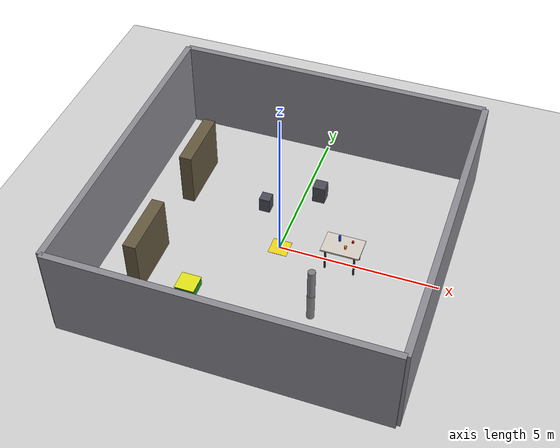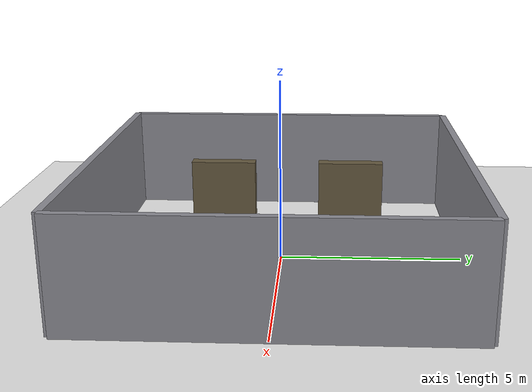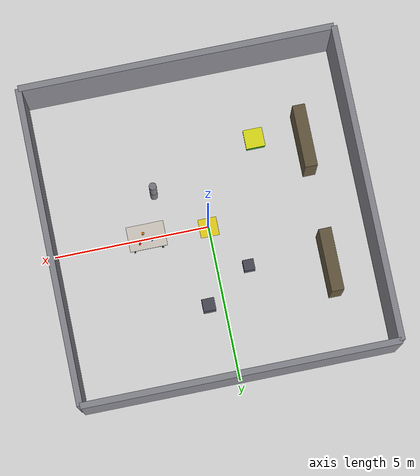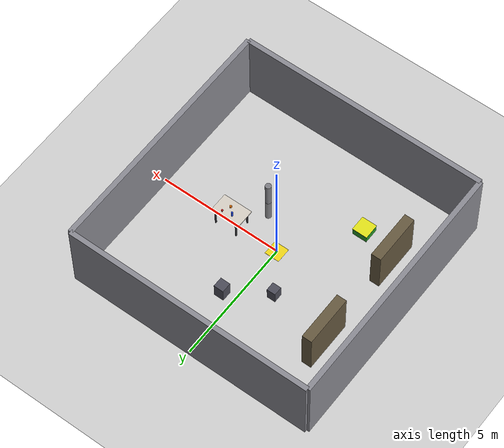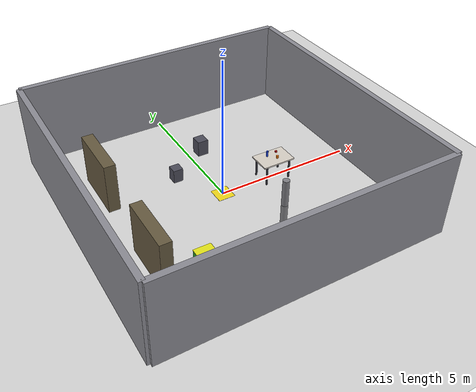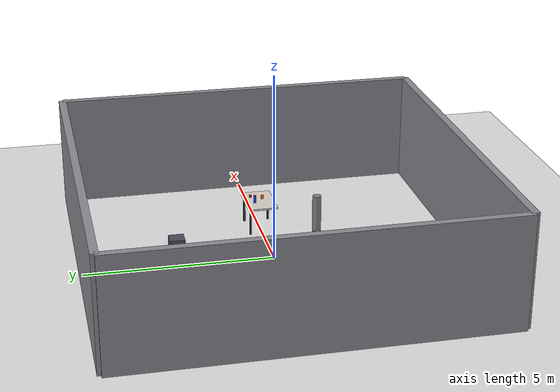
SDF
<?xml version="1.0" ?>
<sdf version="1.6">
  <world name="warehouse_pick_and_place">

    <!-- ═══════════════════════════════════════════════════════
         SCENE SETTINGS
    ═══════════════════════════════════════════════════════ -->
    <scene>
      <ambient>0.3 0.3 0.3 1</ambient>
      <background>0.15 0.15 0.2 1</background>
      <shadows>true</shadows>
      <grid>false</grid>
    </scene>

    <physics type="ode">
      <real_time_update_rate>1000</real_time_update_rate>
      <max_step_size>0.001</max_step_size>
      <real_time_factor>1</real_time_factor>
    </physics>

    <!-- ═══════════════════════════════════════════════════════
         LIGHTING  —  main overhead + two side fills
    ═══════════════════════════════════════════════════════ -->
    <light name="sun" type="directional">
      <cast_shadows>true</cast_shadows>
      <pose>0 0 10 0 0 0</pose>
      <diffuse>0.9 0.9 0.85 1</diffuse>
      <specular>0.3 0.3 0.3 1</specular>
      <direction>-0.3 0.3 -0.9</direction>
    </light>

    <light name="overhead_1" type="point">
      <pose>0 0 5 0 0 0</pose>
      <diffuse>0.8 0.8 0.8 1</diffuse>
      <specular>0.1 0.1 0.1 1</specular>
      <attenuation><range>20</range><constant>0.4</constant><linear>0.01</linear><quadratic>0.001</quadratic></attenuation>
      <cast_shadows>false</cast_shadows>
    </light>

    <light name="overhead_2" type="point">
      <pose>4 0 5 0 0 0</pose>
      <diffuse>0.8 0.8 0.8 1</diffuse>
      <specular>0.1 0.1 0.1 1</specular>
      <attenuation><range>20</range><constant>0.4</constant><linear>0.01</linear><quadratic>0.001</quadratic></attenuation>
      <cast_shadows>false</cast_shadows>
    </light>

    <light name="overhead_3" type="point">
      <pose>-4 0 5 0 0 0</pose>
      <diffuse>0.8 0.8 0.8 1</diffuse>
      <specular>0.1 0.1 0.1 1</specular>
      <attenuation><range>20</range><constant>0.4</constant><linear>0.01</linear><quadratic>0.001</quadratic></attenuation>
      <cast_shadows>false</cast_shadows>
    </light>

    <!-- ═══════════════════════════════════════════════════════
         GROUND PLANE  —  concrete texture colour
    ═══════════════════════════════════════════════════════ -->
    <model name="ground_plane">
      <static>true</static>
      <link name="link">
        <collision name="collision">
          <geometry><plane><normal>0 0 1</normal><size>30 30</size></plane></geometry>
          <surface><friction><ode><mu>100</mu><mu2>50</mu2></ode></friction></surface>
        </collision>
        <visual name="visual">
          <geometry><plane><normal>0 0 1</normal><size>30 30</size></plane></geometry>
          <material>
            <ambient>0.38 0.38 0.38 1</ambient>
            <diffuse>0.42 0.42 0.42 1</diffuse>
            <specular>0.05 0.05 0.05 1</specular>
          </material>
        </visual>
      </link>
    </model>

    <!-- ═══════════════════════════════════════════════════════
         WAREHOUSE WALLS  (10 m × 10 m room, h=3 m)
    ═══════════════════════════════════════════════════════ -->
    <!-- North wall -->
    <model name="wall_north">
      <static>true</static>
      <link name="link">
        <pose>0 5 1.5 0 0 0</pose>
        <collision name="c"><geometry><box><size>10 0.2 3</size></box></geometry></collision>
        <visual name="v"><geometry><box><size>10 0.2 3</size></box></geometry>
          <material><ambient>0.55 0.55 0.58 1</ambient><diffuse>0.55 0.55 0.58 1</diffuse></material></visual>
      </link>
    </model>
    <!-- South wall -->
    <model name="wall_south">
      <static>true</static>
      <link name="link">
        <pose>0 -5 1.5 0 0 0</pose>
        <collision name="c"><geometry><box><size>10 0.2 3</size></box></geometry></collision>
        <visual name="v"><geometry><box><size>10 0.2 3</size></box></geometry>
          <material><ambient>0.55 0.55 0.58 1</ambient><diffuse>0.55 0.55 0.58 1</diffuse></material></visual>
      </link>
    </model>
    <!-- East wall -->
    <model name="wall_east">
      <static>true</static>
      <link name="link">
        <pose>5 0 1.5 0 0 0</pose>
        <collision name="c"><geometry><box><size>0.2 10 3</size></box></geometry></collision>
        <visual name="v"><geometry><box><size>0.2 10 3</size></box></geometry>
          <material><ambient>0.55 0.55 0.58 1</ambient><diffuse>0.55 0.55 0.58 1</diffuse></material></visual>
      </link>
    </model>
    <!-- West wall -->
    <model name="wall_west">
      <static>true</static>
      <link name="link">
        <pose>-5 0 1.5 0 0 0</pose>
        <collision name="c"><geometry><box><size>0.2 10 3</size></box></geometry></collision>
        <visual name="v"><geometry><box><size>0.2 10 3</size></box></geometry>
          <material><ambient>0.55 0.55 0.58 1</ambient><diffuse>0.55 0.55 0.58 1</diffuse></material></visual>
      </link>
    </model>

    <!-- ═══════════════════════════════════════════════════════
         STORAGE SHELVES  —  left side of warehouse
    ═══════════════════════════════════════════════════════ -->
    <!-- Shelf frame left -->
    <model name="shelf_left">
      <static>true</static>
      <link name="link">
        <pose>-3.5 2 0.9 0 0 0</pose>
        <collision name="c"><geometry><box><size>0.4 2.0 1.8</size></box></geometry></collision>
        <visual name="v"><geometry><box><size>0.4 2.0 1.8</size></box></geometry>
          <material><ambient>0.4 0.35 0.25 1</ambient><diffuse>0.4 0.35 0.25 1</diffuse></material></visual>
      </link>
    </model>
    <!-- Shelf frame right -->
    <model name="shelf_right">
      <static>true</static>
      <link name="link">
        <pose>-3.5 -2 0.9 0 0 0</pose>
        <collision name="c"><geometry><box><size>0.4 2.0 1.8</size></box></geometry></collision>
        <visual name="v"><geometry><box><size>0.4 2.0 1.8</size></box></geometry>
          <material><ambient>0.4 0.35 0.25 1</ambient><diffuse>0.4 0.35 0.25 1</diffuse></material></visual>
      </link>
    </model>

    <!-- ═══════════════════════════════════════════════════════
         PICK STATION  —  industrial work table
    ═══════════════════════════════════════════════════════ -->
    <!-- Table top -->
    <model name="pick_table_top">
      <static>true</static>
      <link name="link">
        <pose>2.0 0 0.77 0 0 0</pose>
        <collision name="c"><geometry><box><size>1.2 0.8 0.05</size></box></geometry></collision>
        <visual name="v"><geometry><box><size>1.2 0.8 0.05</size></box></geometry>
          <material><ambient>0.85 0.82 0.78 1</ambient><diffuse>0.85 0.82 0.78 1</diffuse><specular>0.2 0.2 0.2 1</specular></material></visual>
      </link>
    </model>
    <!-- Table leg FL -->
    <model name="leg_fl">
      <static>true</static>
      <link name="link">
        <pose>1.55 0.33 0.375 0 0 0</pose>
        <collision name="c"><geometry><box><size>0.05 0.05 0.75</size></box></geometry></collision>
        <visual name="v"><geometry><box><size>0.05 0.05 0.75</size></box></geometry>
          <material><ambient>0.25 0.25 0.28 1</ambient><diffuse>0.25 0.25 0.28 1</diffuse></material></visual>
      </link>
    </model>
    <!-- Table leg FR -->
    <model name="leg_fr">
      <static>true</static>
      <link name="link">
        <pose>2.45 0.33 0.375 0 0 0</pose>
        <collision name="c"><geometry><box><size>0.05 0.05 0.75</size></box></geometry></collision>
        <visual name="v"><geometry><box><size>0.05 0.05 0.75</size></box></geometry>
          <material><ambient>0.25 0.25 0.28 1</ambient><diffuse>0.25 0.25 0.28 1</diffuse></material></visual>
      </link>
    </model>
    <!-- Table leg BL -->
    <model name="leg_bl">
      <static>true</static>
      <link name="link">
        <pose>1.55 -0.33 0.375 0 0 0</pose>
        <collision name="c"><geometry><box><size>0.05 0.05 0.75</size></box></geometry></collision>
        <visual name="v"><geometry><box><size>0.05 0.05 0.75</size></box></geometry>
          <material><ambient>0.25 0.25 0.28 1</ambient><diffuse>0.25 0.25 0.28 1</diffuse></material></visual>
      </link>
    </model>
    <!-- Table leg BR -->
    <model name="leg_br">
      <static>true</static>
      <link name="link">
        <pose>2.45 -0.33 0.375 0 0 0</pose>
        <collision name="c"><geometry><box><size>0.05 0.05 0.75</size></box></geometry></collision>
        <visual name="v"><geometry><box><size>0.05 0.05 0.75</size></box></geometry>
          <material><ambient>0.25 0.25 0.28 1</ambient><diffuse>0.25 0.25 0.28 1</diffuse></material></visual>
      </link>
    </model>

    <!-- ═══════════════════════════════════════════════════════
         TARGET OBJECTS on pick table  (z = 0.80)
    ═══════════════════════════════════════════════════════ -->
    <!-- Bottle  —  blue cylinder  (YOLO: bottle) -->
    <model name="target_bottle">
      <static>true</static>
      <link name="link">
        <pose>1.85 0.15 0.90 0 0 0</pose>
        <collision name="c"><geometry><cylinder><radius>0.035</radius><length>0.22</length></cylinder></geometry></collision>
        <visual name="v"><geometry><cylinder><radius>0.035</radius><length>0.22</length></cylinder></geometry>
          <material><ambient>0.1 0.25 0.85 1</ambient><diffuse>0.1 0.25 0.85 1</diffuse><specular>0.4 0.4 0.6 1</specular></material></visual>
      </link>
    </model>
    <!-- Cup  —  orange cylinder  (YOLO: cup) -->
    <model name="target_cup">
      <static>true</static>
      <link name="link">
        <pose>2.1 -0.1 0.83 0 0 0</pose>
        <collision name="c"><geometry><cylinder><radius>0.042</radius><length>0.11</length></cylinder></geometry></collision>
        <visual name="v"><geometry><cylinder><radius>0.042</radius><length>0.11</length></cylinder></geometry>
          <material><ambient>0.9 0.45 0.05 1</ambient><diffuse>0.9 0.45 0.05 1</diffuse><specular>0.3 0.2 0.1 1</specular></material></visual>
      </link>
    </model>
    <!-- Cube  —  red box  (custom class: cube) -->
    <model name="target_cube">
      <static>true</static>
      <link name="link">
        <pose>2.25 0.2 0.825 0 0 0</pose>
        <collision name="c"><geometry><box><size>0.06 0.06 0.06</size></box></geometry></collision>
        <visual name="v"><geometry><box><size>0.06 0.06 0.06</size></box></geometry>
          <material><ambient>0.85 0.1 0.1 1</ambient><diffuse>0.85 0.1 0.1 1</diffuse></material></visual>
      </link>
    </model>

    <!-- ═══════════════════════════════════════════════════════
         DROP / DELIVERY STATION
    ═══════════════════════════════════════════════════════ -->
    <!-- Platform base -->
    <model name="drop_platform">
      <static>true</static>
      <link name="link">
        <pose>-2.0 -2.5 0.15 0 0 0</pose>
        <collision name="c"><geometry><box><size>0.6 0.6 0.3</size></box></geometry></collision>
        <visual name="v"><geometry><box><size>0.6 0.6 0.3</size></box></geometry>
          <material><ambient>0.15 0.6 0.15 1</ambient><diffuse>0.15 0.6 0.15 1</diffuse></material></visual>
      </link>
    </model>
    <!-- Border marker ring (thin box on top) -->
    <model name="drop_border">
      <static>true</static>
      <link name="link">
        <pose>-2.0 -2.5 0.308 0 0 0</pose>
        <collision name="c"><geometry><box><size>0.62 0.62 0.016</size></box></geometry></collision>
        <visual name="v"><geometry><box><size>0.62 0.62 0.016</size></box></geometry>
          <material><ambient>0.9 0.9 0.1 1</ambient><diffuse>0.9 0.9 0.1 1</diffuse></material></visual>
      </link>
    </model>

    <!-- Pillar — moved away from origin (robot spawn point) -->
    <model name="pillar_centre">
      <static>true</static>
      <pose>1.5 -1.5 0 0 0 0</pose>
      <link name="link">
        <collision name="c"><geometry><cylinder><radius>0.12</radius><length>2.0</length></cylinder></geometry></collision>
        <visual name="v"><geometry><cylinder><radius>0.12</radius><length>2.0</length></cylinder></geometry>
          <material><ambient>0.5 0.5 0.52 1</ambient><diffuse>0.5 0.5 0.52 1</diffuse></material></visual>
      </link>
    </model>
    <!-- Box obstacle 1 -->
    <model name="obstacle_box_1">
      <static>true</static>
      <link name="link">
        <pose>0.5 2.5 0.3 0 0 0</pose>
        <collision name="c"><geometry><box><size>0.4 0.4 0.6</size></box></geometry></collision>
        <visual name="v"><geometry><box><size>0.4 0.4 0.6</size></box></geometry>
          <material><ambient>0.3 0.3 0.35 1</ambient><diffuse>0.3 0.3 0.35 1</diffuse></material></visual>
      </link>
    </model>
    <!-- Box obstacle 2 -->
    <model name="obstacle_box_2">
      <static>true</static>
      <link name="link">
        <pose>-1.0 1.5 0.25 0 0 0</pose>
        <collision name="c"><geometry><box><size>0.35 0.35 0.5</size></box></geometry></collision>
        <visual name="v"><geometry><box><size>0.35 0.35 0.5</size></box></geometry>
          <material><ambient>0.3 0.3 0.35 1</ambient><diffuse>0.3 0.3 0.35 1</diffuse></material></visual>
      </link>
    </model>

    <!-- ═══════════════════════════════════════════════════════
         ROBOT START ZONE MARKER  —  yellow floor stripe
    ═══════════════════════════════════════════════════════ -->
    <model name="start_zone">
      <static>true</static>
      <link name="link">
        <pose>0 0 0.002 0 0 0</pose>
        <collision name="c"><geometry><box><size>0.6 0.6 0.004</size></box></geometry></collision>
        <visual name="v"><geometry><box><size>0.6 0.6 0.004</size></box></geometry>
          <material><ambient>0.95 0.85 0.1 1</ambient><diffuse>0.95 0.85 0.1 1</diffuse></material></visual>
      </link>
    </model>

  </world>
</sdf>
